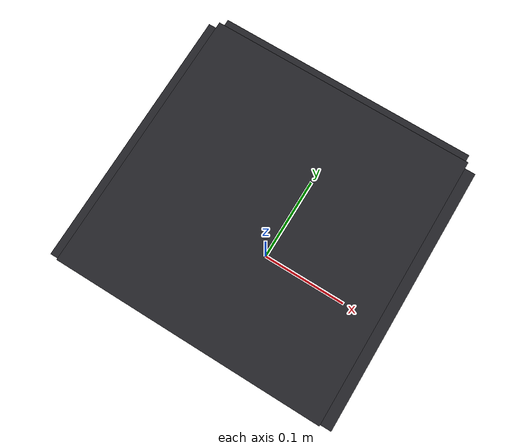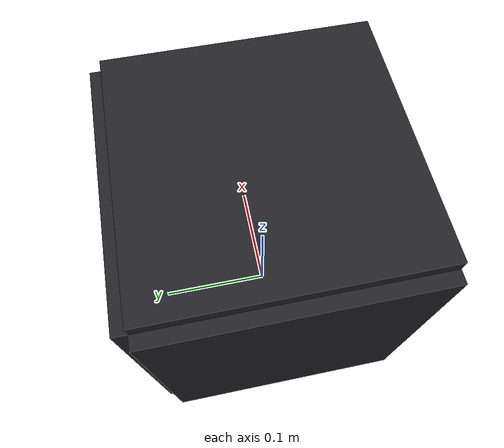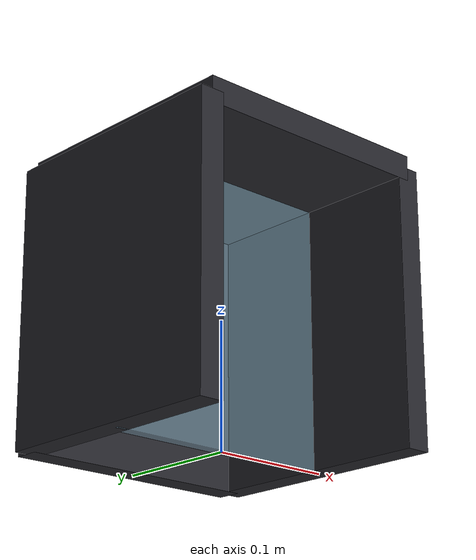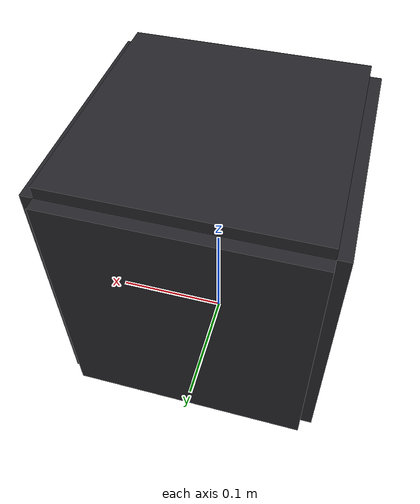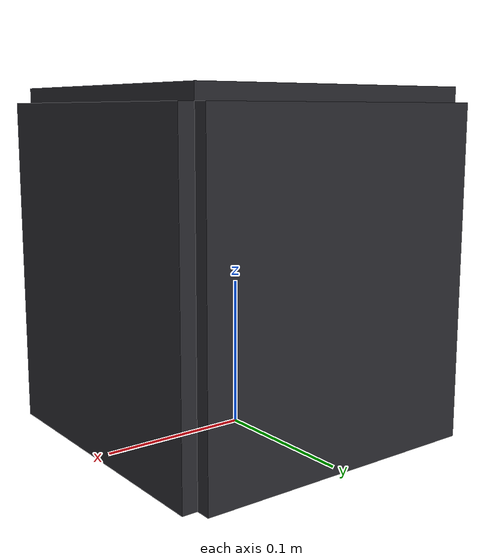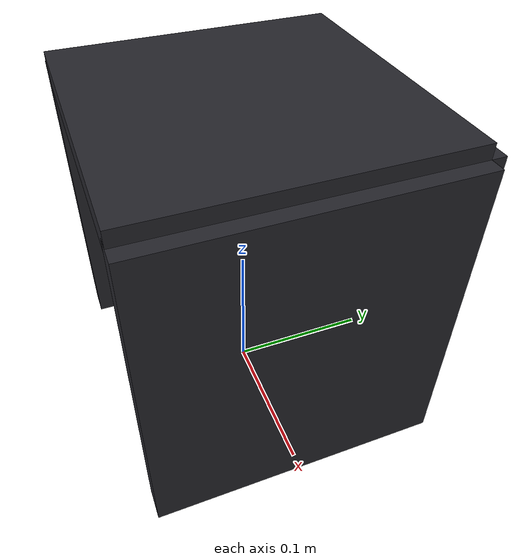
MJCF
<?xml version="1.0" encoding="utf-8"?>
<mujoco model="cell_culture_incubator">
  <compiler angle="radian" autolimits="true"/>
  <default>
    <default class="body"><geom contype="1" conaffinity="1"/></default>
  </default>
  <worldbody>
    <body name="base">
      <geom type="box" size="0.1 0.01 0.11" pos="0 0.1 0.11" rgba="0.15 0.15 0.17 1" class="body"/>
      <geom type="box" size="0.01 0.1 0.11" pos="-0.1 0 0.11" rgba="0.15 0.15 0.17 1" class="body"/>
      <geom type="box" size="0.01 0.1 0.11" pos="0.1 0 0.11" rgba="0.15 0.15 0.17 1" class="body"/>
      <geom type="box" size="0.1 0.1 0.01" pos="0 0 0.22" rgba="0.15 0.15 0.17 1" class="body"/>
      <body name="door" pos="-0.1 0.0 0.11">
        <joint name="door_joint" type="hinge" axis="0 0 1" range="0 1.8" damping="0.6" frictionloss="0.3"/>
  <geom type="box" size="0.1 0.005 0.11" pos="0.1 0 0" rgba="0.6 0.8 0.9 0.4" class="body"/>
      </body>
    </body>
  </worldbody>
</mujoco>
